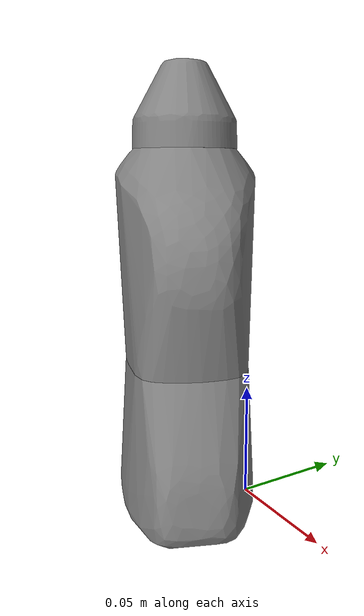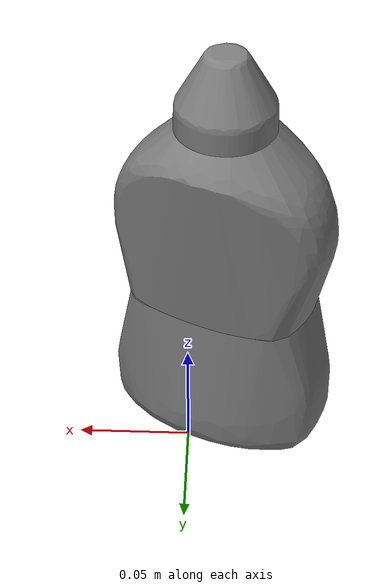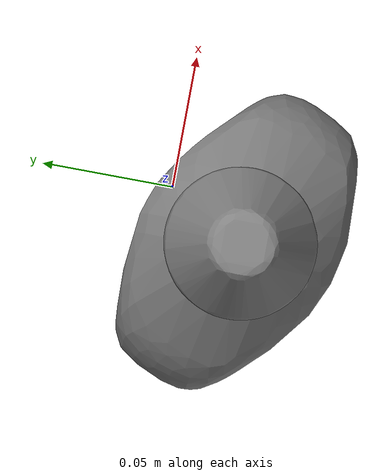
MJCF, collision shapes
<mujoco model="ycb_006_mustard_bottle">
  <compiler meshdir="meshes" texturedir="meshes" angle="radian"/>
  <default>
    <default class="visual"><geom contype="0" conaffinity="0" group="2" density="0"/></default>
    <default class="collision"><geom group="3"/></default>
  </default>
  <asset>
    <texture name="ycb_006_mustard_bottle_tex" type="2d" file="ycb_006_mustard_bottle_texture.png"/>
    <material name="ycb_006_mustard_bottle_mat" texture="ycb_006_mustard_bottle_tex" specular="0.2" shininess="0.3"/>
    <mesh name="ycb_006_mustard_bottle_visual" file="ycb_006_mustard_bottle_visual.obj"/>
    <mesh name="ycb_006_mustard_bottle_hull0" file="ycb_006_mustard_bottle_hull0.obj"/>
    <mesh name="ycb_006_mustard_bottle_hull1" file="ycb_006_mustard_bottle_hull1.obj"/>
    <mesh name="ycb_006_mustard_bottle_hull2" file="ycb_006_mustard_bottle_hull2.obj"/>
  </asset>
  <worldbody>
    <body name="object" pos="0 0 0">
      <freejoint name="object_free"/>
      <geom type="mesh" mesh="ycb_006_mustard_bottle_visual" material="ycb_006_mustard_bottle_mat" class="visual"/>
      <geom type="mesh" mesh="ycb_006_mustard_bottle_hull0" class="collision"/>
      <geom type="mesh" mesh="ycb_006_mustard_bottle_hull1" class="collision"/>
      <geom type="mesh" mesh="ycb_006_mustard_bottle_hull2" class="collision"/>
    </body>
  </worldbody>
</mujoco>
